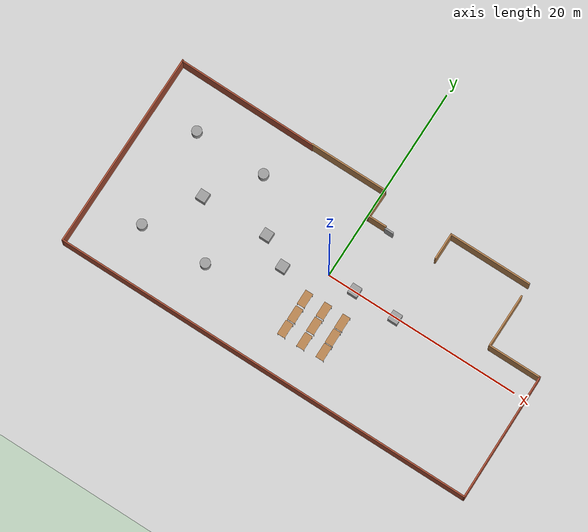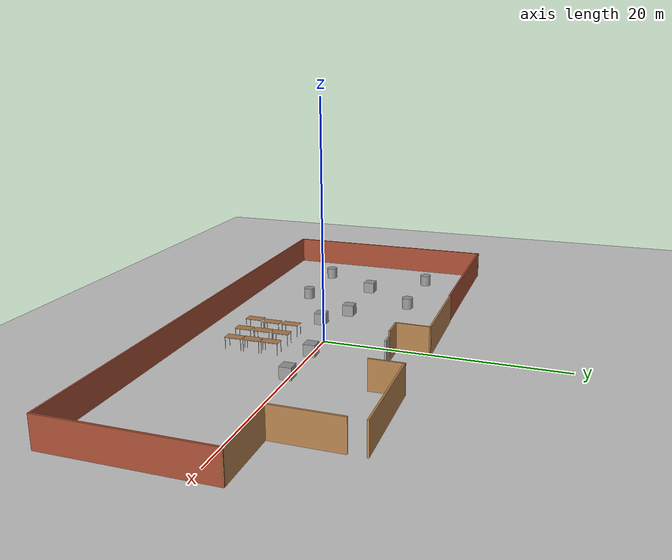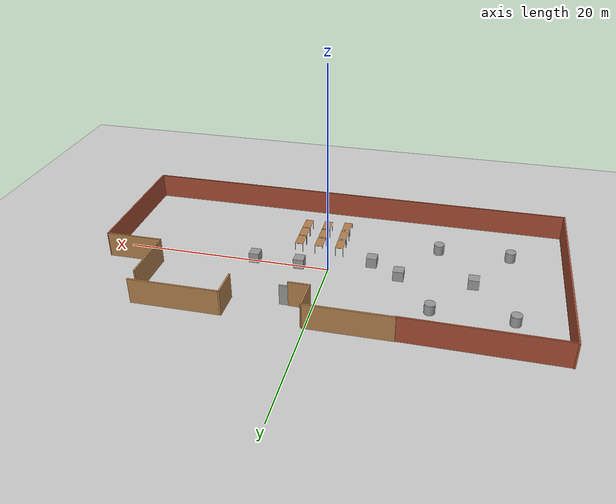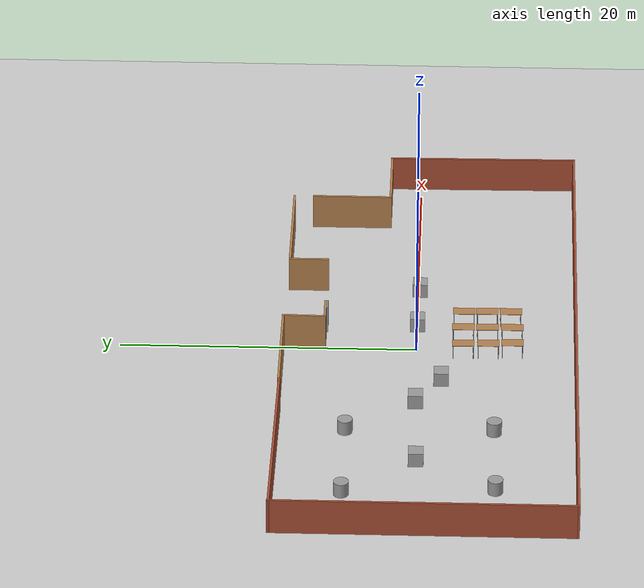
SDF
<sdf version="1.7">
 <world name="default">
  <light name="sun" type="directional">
   <pose>0 0 10 0 -0 0</pose>
   <diffuse>0.8 0.8 0.8 1</diffuse>
   <specular>0.2 0.2 0.2 1</specular>
   <attenuation>
    <range>1000</range>
    <constant>0.9</constant>
    <linear>0.01</linear>
    <quadratic>0.001</quadratic>
   </attenuation>
   <direction>-0.5 0.1 -0.9</direction>
   <spot><inner_angle>0</inner_angle><outer_angle>0</outer_angle><falloff>0</falloff></spot>
  </light>
  <model name="ground_plane">
   <static>1</static>
   <link name="link">
    <collision name="collision">
     <geometry><plane><normal>0 0 1</normal><size>100 100</size></plane></geometry>
     <surface><friction><ode><mu>100</mu><mu2>50</mu2></ode></friction></surface>
    </collision>
    <visual name="visual">
     <cast_shadows>0</cast_shadows>
     <geometry><plane><normal>0 0 1</normal><size>100 100</size></plane></geometry>
     <material>
      <script><uri>file://media/materials/scripts/gazebo.material</uri><name>Gazebo/Grey</name></script>
     </material>
    </visual>
   </link>
  </model>
  <gravity>0 0 -9.8</gravity>
  <magnetic_field>6e-06 2.3e-05 -4.2e-05</magnetic_field>
  <atmosphere type="adiabatic"/>
  <physics type="ode">
   <max_step_size>0.001</max_step_size>
   <real_time_factor>1</real_time_factor>
   <real_time_update_rate>1000</real_time_update_rate>
  </physics>
  <scene><ambient>0.4 0.4 0.4 1</ambient><background>0.7 0.7 0.7 1</background><shadows>1</shadows></scene>
  <audio><device>default</device></audio>
  <spherical_coordinates>
   <surface_model>EARTH_WGS84</surface_model>
   <latitude_deg>0</latitude_deg>
   <longitude_deg>0</longitude_deg>
   <elevation>0</elevation>
   <heading_deg>0</heading_deg>
  </spherical_coordinates>
  <model name="MKS_1">
   <pose>-0.211875 -0.784616 0 0 -0 0</pose>
   <link name="Door_0">
    <collision name="Door_0_Collision">
     <geometry><box><size>0.9 0.17 2</size></box></geometry>
     <pose>0 0 1 0 -0 0</pose>
    </collision>
    <visual name="Door_0_Visual">
     <pose>0 0 1 0 -0 0</pose>
     <geometry><box><size>0.9 0.17 2</size></box></geometry>
     <material>
      <script><uri>file://media/materials/scripts/gazebo.material</uri><name>Gazebo/Grey</name></script>
     </material>
    </visual>
    <pose>2.75193 6.92489 0 0 -0 0</pose>
   </link>
   <link name="Wall_13">
    <collision name="Wall_13_Collision">
     <geometry><box><size>8.00014 0.15 2.5</size></box></geometry>
     <pose>0 0 1.25 0 -0 0</pose>
    </collision>
    <visual name="Wall_13_Visual">
     <pose>0 0 1.25 0 -0 0</pose>
     <geometry><box><size>8.00014 0.15 2.5</size></box></geometry>
     <material>
      <script><uri>file://media/materials/scripts/gazebo.material</uri><name>Gazebo/Wood</name></script>
      <ambient>1 1 1 1</ambient>
     </material>
     <meta><layer>0</layer></meta>
    </visual>
    <pose>-3.44481 9.79409 0 0 -0 0</pose>
   </link>
   <link name="Wall_14">
    <collision name="Wall_14_Collision">
     <geometry><box><size>2.9474 0.15 2.5</size></box></geometry>
     <pose>0 0 1.25 0 -0 0</pose>
    </collision>
    <visual name="Wall_14_Visual">
     <pose>0 0 1.25 0 -0 0</pose>
     <geometry><box><size>2.9474 0.15 2.5</size></box></geometry>
     <material>
      <script><uri>file://media/materials/scripts/gazebo.material</uri><name>Gazebo/Wood</name></script>
      <ambient>1 1 1 1</ambient>
     </material>
     <meta><layer>0</layer></meta>
    </visual>
    <pose>0.453887 8.39539 0 0 -0 -1.5896</pose>
   </link>
   <link name="Wall_16">
    <collision name="Wall_16_Collision">
     <geometry><box><size>2 0.15 2.5</size></box></geometry>
     <pose>0 0 1.25 0 -0 0</pose>
    </collision>
    <visual name="Wall_16_Visual">
     <pose>0 0 1.25 0 -0 0</pose>
     <geometry><box><size>2 0.15 2.5</size></box></geometry>
     <material>
      <script><uri>file://media/materials/scripts/gazebo.material</uri><name>Gazebo/Wood</name></script>
      <ambient>1 1 1 1</ambient>
     </material>
     <meta><layer>0</layer></meta>
    </visual>
    <pose>1.37889 6.99669 0 0 -0 0</pose>
   </link>
   <link name="Wall_18">
    <collision name="Wall_18_Collision">
     <geometry><box><size>2.75 0.15 2.5</size></box></geometry>
     <pose>0 0 1.25 0 -0 0</pose>
    </collision>
    <visual name="Wall_18_Visual">
     <pose>0 0 1.25 0 -0 0</pose>
     <geometry><box><size>2.75 0.15 2.5</size></box></geometry>
     <material>
      <script><uri>file://media/materials/scripts/gazebo.material</uri><name>Gazebo/Wood</name></script>
      <ambient>1 1 1 1</ambient>
     </material>
     <meta><layer>0</layer></meta>
    </visual>
    <pose>7.69968 8.31867 0 0 -0 1.5708</pose>
   </link>
   <link name="Wall_19">
    <collision name="Wall_19_Collision">
     <geometry><box><size>8.5 0.15 2.5</size></box></geometry>
     <pose>0 0 1.25 0 -0 0</pose>
    </collision>
    <visual name="Wall_19_Visual">
     <pose>0 0 1.25 0 -0 0</pose>
     <geometry><box><size>8.5 0.15 2.5</size></box></geometry>
     <material>
      <script><uri>file://media/materials/scripts/gazebo.material</uri><name>Gazebo/Wood</name></script>
      <ambient>1 1 1 1</ambient>
     </material>
     <meta><layer>0</layer></meta>
    </visual>
    <pose>11.8747 9.61867 0 0 -0 0</pose>
   </link>
   <link name="Wall_21">
    <collision name="Wall_21_Collision">
     <geometry><box><size>5.5 0.15 2.5</size></box></geometry>
     <pose>0 0 1.25 0 -0 0</pose>
    </collision>
    <visual name="Wall_21_Visual">
     <pose>0 0 1.25 0 -0 0</pose>
     <geometry><box><size>5.5 0.15 2.5</size></box></geometry>
     <material>
      <script><uri>file://media/materials/scripts/gazebo.material</uri><name>Gazebo/Wood</name></script>
      <ambient>1 1 1 1</ambient>
     </material>
     <meta><layer>0</layer></meta>
    </visual>
    <pose>16.0973 5.58141 0 0 -0 -1.5708</pose>
   </link>
   <link name="Wall_22">
    <collision name="Wall_22_Collision">
     <geometry><box><size>5.5 0.15 2.5</size></box></geometry>
     <pose>0 0 1.25 0 -0 0</pose>
    </collision>
    <visual name="Wall_22_Visual">
     <pose>0 0 1.25 0 -0 0</pose>
     <geometry><box><size>5.5 0.15 2.5</size></box></geometry>
     <material>
      <script><uri>file://media/materials/scripts/gazebo.material</uri><name>Gazebo/Wood</name></script>
      <ambient>1 1 1 1</ambient>
     </material>
     <meta><layer>0</layer></meta>
    </visual>
    <pose>18.7723 2.90641 0 0 -0 0</pose>
   </link>
   <link name="Wall_23">
    <collision name="Wall_23_Collision">
     <geometry><box><size>12.9817 0.15 2.5</size></box></geometry>
     <pose>0 0 1.25 0 -0 0</pose>
    </collision>
    <visual name="Wall_23_Visual">
     <pose>0 0 1.25 0 -0 0</pose>
     <geometry><box><size>12.9817 0.15 2.5</size></box></geometry>
     <material>
      <script><uri>file://media/materials/scripts/gazebo.material</uri><name>Gazebo/Bricks</name></script>
      <ambient>1 1 1 1</ambient>
     </material>
     <meta><layer>0</layer></meta>
    </visual>
    <pose>21.5102 -3.50911 0 0 -0 -1.561</pose>
   </link>
   <link name="Wall_24">
    <collision name="Wall_24_Collision">
     <geometry><box><size>43.25 0.15 2.5</size></box></geometry>
     <pose>0 0 1.25 0 -0 0</pose>
    </collision>
    <visual name="Wall_24_Visual">
     <pose>0 0 1.25 0 -0 0</pose>
     <geometry><box><size>43.25 0.15 2.5</size></box></geometry>
     <material>
      <script><uri>file://media/materials/scripts/gazebo.material</uri><name>Gazebo/Bricks</name></script>
      <ambient>1 1 1 1</ambient>
     </material>
     <meta><layer>0</layer></meta>
    </visual>
    <pose>-0.02302 -9.92464 0 0 -0 3.14159</pose>
   </link>
   <link name="Wall_26">
    <collision name="Wall_26_Collision">
     <geometry><box><size>20 0.15 2.5</size></box></geometry>
     <pose>0 0 1.25 0 -0 0</pose>
    </collision>
    <visual name="Wall_26_Visual">
     <pose>0 0 1.25 0 -0 0</pose>
     <geometry><box><size>20 0.15 2.5</size></box></geometry>
     <material>
      <script><uri>file://media/materials/scripts/gazebo.material</uri><name>Gazebo/Bricks</name></script>
      <ambient>1 1 1 1</ambient>
     </material>
     <meta><layer>0</layer></meta>
    </visual>
    <pose>-21.573 0.000365 0 0 -0 1.5708</pose>
   </link>
   <link name="Wall_27">
    <collision name="Wall_27_Collision">
     <geometry><box><size>14.3538 0.15 2.5</size></box></geometry>
     <pose>0 0 1.25 0 -0 0</pose>
    </collision>
    <visual name="Wall_27_Visual">
     <pose>0 0 1.25 0 -0 0</pose>
     <geometry><box><size>14.3538 0.15 2.5</size></box></geometry>
     <material>
      <script><uri>file://media/materials/scripts/gazebo.material</uri><name>Gazebo/Bricks</name></script>
      <ambient>1 1 1 1</ambient>
     </material>
     <meta><layer>0</layer></meta>
    </visual>
    <pose>-14.4714 9.81373 0 0 -0 -0.009242</pose>
   </link>
   <static>1</static>
  </model>
  <model name="table">
   <static>1</static>
   <link name="link">
    <collision name="surface">
     <pose>0 0 1 0 -0 0</pose>
     <geometry><box><size>1.5 0.8 0.03</size></box></geometry>
     <surface><friction><ode><mu>0.6</mu><mu2>0.6</mu2></ode></friction></surface>
    </collision>
    <visual name="visual1">
     <pose>0 0 1 0 -0 0</pose>
     <geometry><box><size>1.5 0.8 0.03</size></box></geometry>
     <material>
      <script><uri>file://media/materials/scripts/gazebo.material</uri><name>Gazebo/Wood</name></script>
     </material>
    </visual>
    <collision name="front_left_leg">
     <pose>0.68 0.38 0.5 0 -0 0</pose>
     <geometry><cylinder><radius>0.02</radius><length>1</length></cylinder></geometry>
    </collision>
    <visual name="front_left_leg_v">
     <pose>0.68 0.38 0.5 0 -0 0</pose>
     <geometry><cylinder><radius>0.02</radius><length>1</length></cylinder></geometry>
     <material>
      <script><uri>file://media/materials/scripts/gazebo.material</uri><name>Gazebo/Grey</name></script>
     </material>
    </visual>
    <collision name="front_right_leg">
     <pose>0.68 -0.38 0.5 0 -0 0</pose>
     <geometry><cylinder><radius>0.02</radius><length>1</length></cylinder></geometry>
    </collision>
    <visual name="front_right_leg_v">
     <pose>0.68 -0.38 0.5 0 -0 0</pose>
     <geometry><cylinder><radius>0.02</radius><length>1</length></cylinder></geometry>
     <material>
      <script><uri>file://media/materials/scripts/gazebo.material</uri><name>Gazebo/Grey</name></script>
     </material>
    </visual>
    <collision name="back_right_leg">
     <pose>-0.68 -0.38 0.5 0 -0 0</pose>
     <geometry><cylinder><radius>0.02</radius><length>1</length></cylinder></geometry>
    </collision>
    <visual name="back_right_leg_v">
     <pose>-0.68 -0.38 0.5 0 -0 0</pose>
     <geometry><cylinder><radius>0.02</radius><length>1</length></cylinder></geometry>
     <material>
      <script><uri>file://media/materials/scripts/gazebo.material</uri><name>Gazebo/Grey</name></script>
     </material>
    </visual>
    <collision name="back_left_leg">
     <pose>-0.68 0.38 0.5 0 -0 0</pose>
     <geometry><cylinder><radius>0.02</radius><length>1</length></cylinder></geometry>
    </collision>
    <visual name="back_left_leg_v">
     <pose>-0.68 0.38 0.5 0 -0 0</pose>
     <geometry><cylinder><radius>0.02</radius><length>1</length></cylinder></geometry>
     <material>
      <script><uri>file://media/materials/scripts/gazebo.material</uri><name>Gazebo/Grey</name></script>
     </material>
    </visual>
   </link>
   <pose>3.49389 -3.16145 0 0 0 -1.55949</pose>
  </model>
  <model name="table_clone">
   <static>1</static>
   <link name="link">
    <collision name="surface">
     <pose>0 0 1 0 -0 0</pose>
     <geometry><box><size>1.5 0.8 0.03</size></box></geometry>
     <surface><friction><ode><mu>0.6</mu><mu2>0.6</mu2></ode></friction></surface>
    </collision>
    <visual name="visual1">
     <pose>0 0 1 0 -0 0</pose>
     <geometry><box><size>1.5 0.8 0.03</size></box></geometry>
     <material>
      <script><uri>file://media/materials/scripts/gazebo.material</uri><name>Gazebo/Wood</name></script>
     </material>
    </visual>
    <collision name="front_left_leg">
     <pose>0.68 0.38 0.5 0 -0 0</pose>
     <geometry><cylinder><radius>0.02</radius><length>1</length></cylinder></geometry>
    </collision>
    <visual name="front_left_leg_v">
     <pose>0.68 0.38 0.5 0 -0 0</pose>
     <geometry><cylinder><radius>0.02</radius><length>1</length></cylinder></geometry>
     <material>
      <script><uri>file://media/materials/scripts/gazebo.material</uri><name>Gazebo/Grey</name></script>
     </material>
    </visual>
    <collision name="front_right_leg">
     <pose>0.68 -0.38 0.5 0 -0 0</pose>
     <geometry><cylinder><radius>0.02</radius><length>1</length></cylinder></geometry>
    </collision>
    <visual name="front_right_leg_v">
     <pose>0.68 -0.38 0.5 0 -0 0</pose>
     <geometry><cylinder><radius>0.02</radius><length>1</length></cylinder></geometry>
     <material>
      <script><uri>file://media/materials/scripts/gazebo.material</uri><name>Gazebo/Grey</name></script>
     </material>
    </visual>
    <collision name="back_right_leg">
     <pose>-0.68 -0.38 0.5 0 -0 0</pose>
     <geometry><cylinder><radius>0.02</radius><length>1</length></cylinder></geometry>
    </collision>
    <visual name="back_right_leg_v">
     <pose>-0.68 -0.38 0.5 0 -0 0</pose>
     <geometry><cylinder><radius>0.02</radius><length>1</length></cylinder></geometry>
     <material>
      <script><uri>file://media/materials/scripts/gazebo.material</uri><name>Gazebo/Grey</name></script>
     </material>
    </visual>
    <collision name="back_left_leg">
     <pose>-0.68 0.38 0.5 0 -0 0</pose>
     <geometry><cylinder><radius>0.02</radius><length>1</length></cylinder></geometry>
    </collision>
    <visual name="back_left_leg_v">
     <pose>-0.68 0.38 0.5 0 -0 0</pose>
     <geometry><cylinder><radius>0.02</radius><length>1</length></cylinder></geometry>
     <material>
      <script><uri>file://media/materials/scripts/gazebo.material</uri><name>Gazebo/Grey</name></script>
     </material>
    </visual>
   </link>
   <pose>3.51364 -4.74943 0 0 0 -1.55949</pose>
  </model>
  <model name="table_clone_clone">
   <static>1</static>
   <link name="link">
    <collision name="surface">
     <pose>0 0 1 0 -0 0</pose>
     <geometry><box><size>1.5 0.8 0.03</size></box></geometry>
     <surface><friction><ode><mu>0.6</mu><mu2>0.6</mu2></ode></friction></surface>
    </collision>
    <visual name="visual1">
     <pose>0 0 1 0 -0 0</pose>
     <geometry><box><size>1.5 0.8 0.03</size></box></geometry>
     <material>
      <script><uri>file://media/materials/scripts/gazebo.material</uri><name>Gazebo/Wood</name></script>
     </material>
    </visual>
    <collision name="front_left_leg">
     <pose>0.68 0.38 0.5 0 -0 0</pose>
     <geometry><cylinder><radius>0.02</radius><length>1</length></cylinder></geometry>
    </collision>
    <visual name="front_left_leg_v">
     <pose>0.68 0.38 0.5 0 -0 0</pose>
     <geometry><cylinder><radius>0.02</radius><length>1</length></cylinder></geometry>
     <material>
      <script><uri>file://media/materials/scripts/gazebo.material</uri><name>Gazebo/Grey</name></script>
     </material>
    </visual>
    <collision name="front_right_leg">
     <pose>0.68 -0.38 0.5 0 -0 0</pose>
     <geometry><cylinder><radius>0.02</radius><length>1</length></cylinder></geometry>
    </collision>
    <visual name="front_right_leg_v">
     <pose>0.68 -0.38 0.5 0 -0 0</pose>
     <geometry><cylinder><radius>0.02</radius><length>1</length></cylinder></geometry>
     <material>
      <script><uri>file://media/materials/scripts/gazebo.material</uri><name>Gazebo/Grey</name></script>
     </material>
    </visual>
    <collision name="back_right_leg">
     <pose>-0.68 -0.38 0.5 0 -0 0</pose>
     <geometry><cylinder><radius>0.02</radius><length>1</length></cylinder></geometry>
    </collision>
    <visual name="back_right_leg_v">
     <pose>-0.68 -0.38 0.5 0 -0 0</pose>
     <geometry><cylinder><radius>0.02</radius><length>1</length></cylinder></geometry>
     <material>
      <script><uri>file://media/materials/scripts/gazebo.material</uri><name>Gazebo/Grey</name></script>
     </material>
    </visual>
    <collision name="back_left_leg">
     <pose>-0.68 0.38 0.5 0 -0 0</pose>
     <geometry><cylinder><radius>0.02</radius><length>1</length></cylinder></geometry>
    </collision>
    <visual name="back_left_leg_v">
     <pose>-0.68 0.38 0.5 0 -0 0</pose>
     <geometry><cylinder><radius>0.02</radius><length>1</length></cylinder></geometry>
     <material>
      <script><uri>file://media/materials/scripts/gazebo.material</uri><name>Gazebo/Grey</name></script>
     </material>
    </visual>
   </link>
   <pose>3.53909 -6.32714 0 0 0 -1.55949</pose>
  </model>
  <model name="table_clone_clone_clone">
   <static>1</static>
   <link name="link">
    <collision name="surface">
     <pose>0 0 1 0 -0 0</pose>
     <geometry><box><size>1.5 0.8 0.03</size></box></geometry>
     <surface><friction><ode><mu>0.6</mu><mu2>0.6</mu2></ode></friction></surface>
    </collision>
    <visual name="visual1">
     <pose>0 0 1 0 -0 0</pose>
     <geometry><box><size>1.5 0.8 0.03</size></box></geometry>
     <material>
      <script><uri>file://media/materials/scripts/gazebo.material</uri><name>Gazebo/Wood</name></script>
     </material>
    </visual>
    <collision name="front_left_leg">
     <pose>0.68 0.38 0.5 0 -0 0</pose>
     <geometry><cylinder><radius>0.02</radius><length>1</length></cylinder></geometry>
    </collision>
    <visual name="front_left_leg_v">
     <pose>0.68 0.38 0.5 0 -0 0</pose>
     <geometry><cylinder><radius>0.02</radius><length>1</length></cylinder></geometry>
     <material>
      <script><uri>file://media/materials/scripts/gazebo.material</uri><name>Gazebo/Grey</name></script>
     </material>
    </visual>
    <collision name="front_right_leg">
     <pose>0.68 -0.38 0.5 0 -0 0</pose>
     <geometry><cylinder><radius>0.02</radius><length>1</length></cylinder></geometry>
    </collision>
    <visual name="front_right_leg_v">
     <pose>0.68 -0.38 0.5 0 -0 0</pose>
     <geometry><cylinder><radius>0.02</radius><length>1</length></cylinder></geometry>
     <material>
      <script><uri>file://media/materials/scripts/gazebo.material</uri><name>Gazebo/Grey</name></script>
     </material>
    </visual>
    <collision name="back_right_leg">
     <pose>-0.68 -0.38 0.5 0 -0 0</pose>
     <geometry><cylinder><radius>0.02</radius><length>1</length></cylinder></geometry>
    </collision>
    <visual name="back_right_leg_v">
     <pose>-0.68 -0.38 0.5 0 -0 0</pose>
     <geometry><cylinder><radius>0.02</radius><length>1</length></cylinder></geometry>
     <material>
      <script><uri>file://media/materials/scripts/gazebo.material</uri><name>Gazebo/Grey</name></script>
     </material>
    </visual>
    <collision name="back_left_leg">
     <pose>-0.68 0.38 0.5 0 -0 0</pose>
     <geometry><cylinder><radius>0.02</radius><length>1</length></cylinder></geometry>
    </collision>
    <visual name="back_left_leg_v">
     <pose>-0.68 0.38 0.5 0 -0 0</pose>
     <geometry><cylinder><radius>0.02</radius><length>1</length></cylinder></geometry>
     <material>
      <script><uri>file://media/materials/scripts/gazebo.material</uri><name>Gazebo/Grey</name></script>
     </material>
    </visual>
   </link>
   <pose>1.50633 -3.135 0 0 0 -1.55949</pose>
  </model>
  <model name="table_clone_clone_clone_0">
   <static>1</static>
   <link name="link">
    <collision name="surface">
     <pose>0 0 1 0 -0 0</pose>
     <geometry><box><size>1.5 0.8 0.03</size></box></geometry>
     <surface><friction><ode><mu>0.6</mu><mu2>0.6</mu2></ode></friction></surface>
    </collision>
    <visual name="visual1">
     <pose>0 0 1 0 -0 0</pose>
     <geometry><box><size>1.5 0.8 0.03</size></box></geometry>
     <material>
      <script><uri>file://media/materials/scripts/gazebo.material</uri><name>Gazebo/Wood</name></script>
     </material>
    </visual>
    <collision name="front_left_leg">
     <pose>0.68 0.38 0.5 0 -0 0</pose>
     <geometry><cylinder><radius>0.02</radius><length>1</length></cylinder></geometry>
    </collision>
    <visual name="front_left_leg_v">
     <pose>0.68 0.38 0.5 0 -0 0</pose>
     <geometry><cylinder><radius>0.02</radius><length>1</length></cylinder></geometry>
     <material>
      <script><uri>file://media/materials/scripts/gazebo.material</uri><name>Gazebo/Grey</name></script>
     </material>
    </visual>
    <collision name="front_right_leg">
     <pose>0.68 -0.38 0.5 0 -0 0</pose>
     <geometry><cylinder><radius>0.02</radius><length>1</length></cylinder></geometry>
    </collision>
    <visual name="front_right_leg_v">
     <pose>0.68 -0.38 0.5 0 -0 0</pose>
     <geometry><cylinder><radius>0.02</radius><length>1</length></cylinder></geometry>
     <material>
      <script><uri>file://media/materials/scripts/gazebo.material</uri><name>Gazebo/Grey</name></script>
     </material>
    </visual>
    <collision name="back_right_leg">
     <pose>-0.68 -0.38 0.5 0 -0 0</pose>
     <geometry><cylinder><radius>0.02</radius><length>1</length></cylinder></geometry>
    </collision>
    <visual name="back_right_leg_v">
     <pose>-0.68 -0.38 0.5 0 -0 0</pose>
     <geometry><cylinder><radius>0.02</radius><length>1</length></cylinder></geometry>
     <material>
      <script><uri>file://media/materials/scripts/gazebo.material</uri><name>Gazebo/Grey</name></script>
     </material>
    </visual>
    <collision name="back_left_leg">
     <pose>-0.68 0.38 0.5 0 -0 0</pose>
     <geometry><cylinder><radius>0.02</radius><length>1</length></cylinder></geometry>
    </collision>
    <visual name="back_left_leg_v">
     <pose>-0.68 0.38 0.5 0 -0 0</pose>
     <geometry><cylinder><radius>0.02</radius><length>1</length></cylinder></geometry>
     <material>
      <script><uri>file://media/materials/scripts/gazebo.material</uri><name>Gazebo/Grey</name></script>
     </material>
    </visual>
   </link>
   <pose>1.51731 -4.77148 0 0 0 -1.55949</pose>
  </model>
  <model name="table_clone_clone_clone_1">
   <static>1</static>
   <link name="link">
    <collision name="surface">
     <pose>0 0 1 0 -0 0</pose>
     <geometry><box><size>1.5 0.8 0.03</size></box></geometry>
     <surface><friction><ode><mu>0.6</mu><mu2>0.6</mu2></ode></friction></surface>
    </collision>
    <visual name="visual1">
     <pose>0 0 1 0 -0 0</pose>
     <geometry><box><size>1.5 0.8 0.03</size></box></geometry>
     <material>
      <script><uri>file://media/materials/scripts/gazebo.material</uri><name>Gazebo/Wood</name></script>
     </material>
    </visual>
    <collision name="front_left_leg">
     <pose>0.68 0.38 0.5 0 -0 0</pose>
     <geometry><cylinder><radius>0.02</radius><length>1</length></cylinder></geometry>
    </collision>
    <visual name="front_left_leg_v">
     <pose>0.68 0.38 0.5 0 -0 0</pose>
     <geometry><cylinder><radius>0.02</radius><length>1</length></cylinder></geometry>
     <material>
      <script><uri>file://media/materials/scripts/gazebo.material</uri><name>Gazebo/Grey</name></script>
     </material>
    </visual>
    <collision name="front_right_leg">
     <pose>0.68 -0.38 0.5 0 -0 0</pose>
     <geometry><cylinder><radius>0.02</radius><length>1</length></cylinder></geometry>
    </collision>
    <visual name="front_right_leg_v">
     <pose>0.68 -0.38 0.5 0 -0 0</pose>
     <geometry><cylinder><radius>0.02</radius><length>1</length></cylinder></geometry>
     <material>
      <script><uri>file://media/materials/scripts/gazebo.material</uri><name>Gazebo/Grey</name></script>
     </material>
    </visual>
    <collision name="back_right_leg">
     <pose>-0.68 -0.38 0.5 0 -0 0</pose>
     <geometry><cylinder><radius>0.02</radius><length>1</length></cylinder></geometry>
    </collision>
    <visual name="back_right_leg_v">
     <pose>-0.68 -0.38 0.5 0 -0 0</pose>
     <geometry><cylinder><radius>0.02</radius><length>1</length></cylinder></geometry>
     <material>
      <script><uri>file://media/materials/scripts/gazebo.material</uri><name>Gazebo/Grey</name></script>
     </material>
    </visual>
    <collision name="back_left_leg">
     <pose>-0.68 0.38 0.5 0 -0 0</pose>
     <geometry><cylinder><radius>0.02</radius><length>1</length></cylinder></geometry>
    </collision>
    <visual name="back_left_leg_v">
     <pose>-0.68 0.38 0.5 0 -0 0</pose>
     <geometry><cylinder><radius>0.02</radius><length>1</length></cylinder></geometry>
     <material>
      <script><uri>file://media/materials/scripts/gazebo.material</uri><name>Gazebo/Grey</name></script>
     </material>
    </visual>
   </link>
   <pose>1.5353 -6.43574 0 0 0 -1.55949</pose>
  </model>
  <model name="table_clone_clone_clone_2">
   <static>1</static>
   <link name="link">
    <collision name="surface">
     <pose>0 0 1 0 -0 0</pose>
     <geometry><box><size>1.5 0.8 0.03</size></box></geometry>
     <surface><friction><ode><mu>0.6</mu><mu2>0.6</mu2></ode></friction></surface>
    </collision>
    <visual name="visual1">
     <pose>0 0 1 0 -0 0</pose>
     <geometry><box><size>1.5 0.8 0.03</size></box></geometry>
     <material>
      <script><uri>file://media/materials/scripts/gazebo.material</uri><name>Gazebo/Wood</name></script>
     </material>
    </visual>
    <collision name="front_left_leg">
     <pose>0.68 0.38 0.5 0 -0 0</pose>
     <geometry><cylinder><radius>0.02</radius><length>1</length></cylinder></geometry>
    </collision>
    <visual name="front_left_leg_v">
     <pose>0.68 0.38 0.5 0 -0 0</pose>
     <geometry><cylinder><radius>0.02</radius><length>1</length></cylinder></geometry>
     <material>
      <script><uri>file://media/materials/scripts/gazebo.material</uri><name>Gazebo/Grey</name></script>
     </material>
    </visual>
    <collision name="front_right_leg">
     <pose>0.68 -0.38 0.5 0 -0 0</pose>
     <geometry><cylinder><radius>0.02</radius><length>1</length></cylinder></geometry>
    </collision>
    <visual name="front_right_leg_v">
     <pose>0.68 -0.38 0.5 0 -0 0</pose>
     <geometry><cylinder><radius>0.02</radius><length>1</length></cylinder></geometry>
     <material>
      <script><uri>file://media/materials/scripts/gazebo.material</uri><name>Gazebo/Grey</name></script>
     </material>
    </visual>
    <collision name="back_right_leg">
     <pose>-0.68 -0.38 0.5 0 -0 0</pose>
     <geometry><cylinder><radius>0.02</radius><length>1</length></cylinder></geometry>
    </collision>
    <visual name="back_right_leg_v">
     <pose>-0.68 -0.38 0.5 0 -0 0</pose>
     <geometry><cylinder><radius>0.02</radius><length>1</length></cylinder></geometry>
     <material>
      <script><uri>file://media/materials/scripts/gazebo.material</uri><name>Gazebo/Grey</name></script>
     </material>
    </visual>
    <collision name="back_left_leg">
     <pose>-0.68 0.38 0.5 0 -0 0</pose>
     <geometry><cylinder><radius>0.02</radius><length>1</length></cylinder></geometry>
    </collision>
    <visual name="back_left_leg_v">
     <pose>-0.68 0.38 0.5 0 -0 0</pose>
     <geometry><cylinder><radius>0.02</radius><length>1</length></cylinder></geometry>
     <material>
      <script><uri>file://media/materials/scripts/gazebo.material</uri><name>Gazebo/Grey</name></script>
     </material>
    </visual>
   </link>
   <pose>-0.532703 -3.14821 0 0 0 -1.55949</pose>
  </model>
  <model name="table_clone_clone_clone_3">
   <static>1</static>
   <link name="link">
    <collision name="surface">
     <pose>0 0 1 0 -0 0</pose>
     <geometry><box><size>1.5 0.8 0.03</size></box></geometry>
     <surface><friction><ode><mu>0.6</mu><mu2>0.6</mu2></ode></friction></surface>
    </collision>
    <visual name="visual1">
     <pose>0 0 1 0 -0 0</pose>
     <geometry><box><size>1.5 0.8 0.03</size></box></geometry>
     <material>
      <script><uri>file://media/materials/scripts/gazebo.material</uri><name>Gazebo/Wood</name></script>
     </material>
    </visual>
    <collision name="front_left_leg">
     <pose>0.68 0.38 0.5 0 -0 0</pose>
     <geometry><cylinder><radius>0.02</radius><length>1</length></cylinder></geometry>
    </collision>
    <visual name="front_left_leg_v">
     <pose>0.68 0.38 0.5 0 -0 0</pose>
     <geometry><cylinder><radius>0.02</radius><length>1</length></cylinder></geometry>
     <material>
      <script><uri>file://media/materials/scripts/gazebo.material</uri><name>Gazebo/Grey</name></script>
     </material>
    </visual>
    <collision name="front_right_leg">
     <pose>0.68 -0.38 0.5 0 -0 0</pose>
     <geometry><cylinder><radius>0.02</radius><length>1</length></cylinder></geometry>
    </collision>
    <visual name="front_right_leg_v">
     <pose>0.68 -0.38 0.5 0 -0 0</pose>
     <geometry><cylinder><radius>0.02</radius><length>1</length></cylinder></geometry>
     <material>
      <script><uri>file://media/materials/scripts/gazebo.material</uri><name>Gazebo/Grey</name></script>
     </material>
    </visual>
    <collision name="back_right_leg">
     <pose>-0.68 -0.38 0.5 0 -0 0</pose>
     <geometry><cylinder><radius>0.02</radius><length>1</length></cylinder></geometry>
    </collision>
    <visual name="back_right_leg_v">
     <pose>-0.68 -0.38 0.5 0 -0 0</pose>
     <geometry><cylinder><radius>0.02</radius><length>1</length></cylinder></geometry>
     <material>
      <script><uri>file://media/materials/scripts/gazebo.material</uri><name>Gazebo/Grey</name></script>
     </material>
    </visual>
    <collision name="back_left_leg">
     <pose>-0.68 0.38 0.5 0 -0 0</pose>
     <geometry><cylinder><radius>0.02</radius><length>1</length></cylinder></geometry>
    </collision>
    <visual name="back_left_leg_v">
     <pose>-0.68 0.38 0.5 0 -0 0</pose>
     <geometry><cylinder><radius>0.02</radius><length>1</length></cylinder></geometry>
     <material>
      <script><uri>file://media/materials/scripts/gazebo.material</uri><name>Gazebo/Grey</name></script>
     </material>
    </visual>
   </link>
   <pose>-0.499452 -4.83316 0 0 0 -1.55949</pose>
  </model>
  <model name="table_clone_clone_clone_4">
   <static>1</static>
   <link name="link">
    <collision name="surface">
     <pose>0 0 1 0 -0 0</pose>
     <geometry><box><size>1.5 0.8 0.03</size></box></geometry>
     <surface><friction><ode><mu>0.6</mu><mu2>0.6</mu2></ode></friction></surface>
    </collision>
    <visual name="visual1">
     <pose>0 0 1 0 -0 0</pose>
     <geometry><box><size>1.5 0.8 0.03</size></box></geometry>
     <material>
      <script><uri>file://media/materials/scripts/gazebo.material</uri><name>Gazebo/Wood</name></script>
     </material>
    </visual>
    <collision name="front_left_leg">
     <pose>0.68 0.38 0.5 0 -0 0</pose>
     <geometry><cylinder><radius>0.02</radius><length>1</length></cylinder></geometry>
    </collision>
    <visual name="front_left_leg_v">
     <pose>0.68 0.38 0.5 0 -0 0</pose>
     <geometry><cylinder><radius>0.02</radius><length>1</length></cylinder></geometry>
     <material>
      <script><uri>file://media/materials/scripts/gazebo.material</uri><name>Gazebo/Grey</name></script>
     </material>
    </visual>
    <collision name="front_right_leg">
     <pose>0.68 -0.38 0.5 0 -0 0</pose>
     <geometry><cylinder><radius>0.02</radius><length>1</length></cylinder></geometry>
    </collision>
    <visual name="front_right_leg_v">
     <pose>0.68 -0.38 0.5 0 -0 0</pose>
     <geometry><cylinder><radius>0.02</radius><length>1</length></cylinder></geometry>
     <material>
      <script><uri>file://media/materials/scripts/gazebo.material</uri><name>Gazebo/Grey</name></script>
     </material>
    </visual>
    <collision name="back_right_leg">
     <pose>-0.68 -0.38 0.5 0 -0 0</pose>
     <geometry><cylinder><radius>0.02</radius><length>1</length></cylinder></geometry>
    </collision>
    <visual name="back_right_leg_v">
     <pose>-0.68 -0.38 0.5 0 -0 0</pose>
     <geometry><cylinder><radius>0.02</radius><length>1</length></cylinder></geometry>
     <material>
      <script><uri>file://media/materials/scripts/gazebo.material</uri><name>Gazebo/Grey</name></script>
     </material>
    </visual>
    <collision name="back_left_leg">
     <pose>-0.68 0.38 0.5 0 -0 0</pose>
     <geometry><cylinder><radius>0.02</radius><length>1</length></cylinder></geometry>
    </collision>
    <visual name="back_left_leg_v">
     <pose>-0.68 0.38 0.5 0 -0 0</pose>
     <geometry><cylinder><radius>0.02</radius><length>1</length></cylinder></geometry>
     <material>
      <script><uri>file://media/materials/scripts/gazebo.material</uri><name>Gazebo/Grey</name></script>
     </material>
    </visual>
   </link>
   <pose>-0.526688 -6.45117 0.090247 0 0 -1.55949</pose>
  </model>
  <model name="unit_box">
   <pose>-3.90317 -1.70807 0.5 0 -0 0</pose>
   <link name="link">
    <inertial>
     <mass>1</mass>
     <inertia>
      <ixx>0.166667</ixx>
      <ixy>0</ixy>
      <ixz>0</ixz>
      <iyy>0.166667</iyy>
      <iyz>0</iyz>
      <izz>0.166667</izz>
     </inertia>
    </inertial>
    <collision name="collision"><geometry><box><size>1 1 1</size></box></geometry></collision>
    <visual name="visual">
     <geometry><box><size>1 1 1</size></box></geometry>
     <material>
      <script><name>Gazebo/Grey</name><uri>file://media/materials/scripts/gazebo.material</uri></script>
     </material>
    </visual>
   </link>
  </model>
  <model name="unit_box_0">
   <pose>2.81235 -0.017848 0.5 -0 -0 -0</pose>
   <link name="link">
    <inertial>
     <mass>1</mass>
     <inertia>
      <ixx>0.166667</ixx>
      <ixy>0</ixy>
      <ixz>0</ixz>
      <iyy>0.166667</iyy>
      <iyz>0</iyz>
      <izz>0.166667</izz>
     </inertia>
    </inertial>
    <collision name="collision"><geometry><box><size>1 1 1</size></box></geometry></collision>
    <visual name="visual">
     <geometry><box><size>1 1 1</size></box></geometry>
     <material>
      <script><name>Gazebo/Grey</name><uri>file://media/materials/scripts/gazebo.material</uri></script>
     </material>
    </visual>
   </link>
  </model>
  <model name="unit_box_1">
   <pose>7.23045 -0.118987 0.5 0 -0 0</pose>
   <link name="link">
    <inertial>
     <mass>1</mass>
     <inertia>
      <ixx>0.166667</ixx>
      <ixy>0</ixy>
      <ixz>0</ixz>
      <iyy>0.166667</iyy>
      <iyz>0</iyz>
      <izz>0.166667</izz>
     </inertia>
    </inertial>
    <collision name="collision"><geometry><box><size>1 1 1</size></box></geometry></collision>
    <visual name="visual">
     <geometry><box><size>1 1 1</size></box></geometry>
     <material>
      <script><name>Gazebo/Grey</name><uri>file://media/materials/scripts/gazebo.material</uri></script>
     </material>
    </visual>
   </link>
  </model>
  <model name="unit_box_2">
   <pose>-6.68326 -0.043092 0.5 -0 -0 -0</pose>
   <link name="link">
    <inertial>
     <mass>1</mass>
     <inertia>
      <ixx>0.166667</ixx>
      <ixy>0</ixy>
      <ixz>0</ixz>
      <iyy>0.166667</iyy>
      <iyz>0</iyz>
      <izz>0.166667</izz>
     </inertia>
    </inertial>
    <collision name="collision"><geometry><box><size>1 1 1</size></box></geometry></collision>
    <visual name="visual">
     <geometry><box><size>1 1 1</size></box></geometry>
     <material>
      <script><name>Gazebo/Grey</name><uri>file://media/materials/scripts/gazebo.material</uri></script>
     </material>
    </visual>
   </link>
  </model>
  <model name="unit_box_3">
   <pose>-13.5467 -0.186771 0.5 0 -0 0</pose>
   <link name="link">
    <inertial>
     <mass>1</mass>
     <inertia>
      <ixx>0.166667</ixx>
      <ixy>0</ixy>
      <ixz>0</ixz>
      <iyy>0.166667</iyy>
      <iyz>0</iyz>
      <izz>0.166667</izz>
     </inertia>
    </inertial>
    <collision name="collision"><geometry><box><size>1 1 1</size></box></geometry></collision>
    <visual name="visual">
     <geometry><box><size>1 1 1</size></box></geometry>
     <material>
      <script><name>Gazebo/Grey</name><uri>file://media/materials/scripts/gazebo.material</uri></script>
     </material>
    </visual>
   </link>
  </model>
  <model name="unit_cylinder">
   <pose>-17.3122 4.57365 0.499992 -3e-06 -4e-06 -0</pose>
   <link name="link">
    <inertial>
     <mass>1</mass>
     <inertia><ixx>0.145833</ixx><ixy>0</ixy><ixz>0</ixz><iyy>0.145833</iyy><iyz>0</iyz><izz>0.125</izz></inertia>
    </inertial>
    <collision name="collision">
     <geometry><cylinder><radius>0.5</radius><length>1</length></cylinder></geometry>
    </collision>
    <visual name="visual">
     <geometry><cylinder><radius>0.5</radius><length>1</length></cylinder></geometry>
     <material>
      <script><name>Gazebo/Grey</name><uri>file://media/materials/scripts/gazebo.material</uri></script>
     </material>
    </visual>
   </link>
  </model>
  <model name="unit_cylinder_0">
   <pose>-10.0209 4.53889 0.499993 -3e-06 -3e-06 0</pose>
   <link name="link">
    <inertial>
     <mass>1</mass>
     <inertia><ixx>0.145833</ixx><ixy>0</ixy><ixz>0</ixz><iyy>0.145833</iyy><iyz>0</iyz><izz>0.125</izz></inertia>
    </inertial>
    <collision name="collision">
     <geometry><cylinder><radius>0.5</radius><length>1</length></cylinder></geometry>
    </collision>
    <visual name="visual">
     <geometry><cylinder><radius>0.5</radius><length>1</length></cylinder></geometry>
     <material>
      <script><name>Gazebo/Grey</name><uri>file://media/materials/scripts/gazebo.material</uri></script>
     </material>
    </visual>
   </link>
  </model>
  <model name="unit_cylinder_1">
   <pose>-9.95539 -5.27605 0.499997 3e-06 4e-06 -0</pose>
   <link name="link">
    <inertial>
     <mass>1</mass>
     <inertia><ixx>0.145833</ixx><ixy>0</ixy><ixz>0</ixz><iyy>0.145833</iyy><iyz>0</iyz><izz>0.125</izz></inertia>
    </inertial>
    <collision name="collision">
     <geometry><cylinder><radius>0.5</radius><length>1</length></cylinder></geometry>
    </collision>
    <visual name="visual">
     <geometry><cylinder><radius>0.5</radius><length>1</length></cylinder></geometry>
     <material>
      <script><name>Gazebo/Grey</name><uri>file://media/materials/scripts/gazebo.material</uri></script>
     </material>
    </visual>
   </link>
  </model>
  <model name="unit_cylinder_2">
   <pose>-16.7816 -5.39323 0.499993 -3e-06 -4e-06 -0</pose>
   <link name="link">
    <inertial>
     <mass>1</mass>
     <inertia><ixx>0.145833</ixx><ixy>0</ixy><ixz>0</ixz><iyy>0.145833</iyy><iyz>0</iyz><izz>0.125</izz></inertia>
    </inertial>
    <collision name="collision">
     <geometry><cylinder><radius>0.5</radius><length>1</length></cylinder></geometry>
    </collision>
    <visual name="visual">
     <geometry><cylinder><radius>0.5</radius><length>1</length></cylinder></geometry>
     <material>
      <script><name>Gazebo/Grey</name><uri>file://media/materials/scripts/gazebo.material</uri></script>
     </material>
    </visual>
   </link>
  </model>
 </world>
</sdf>
